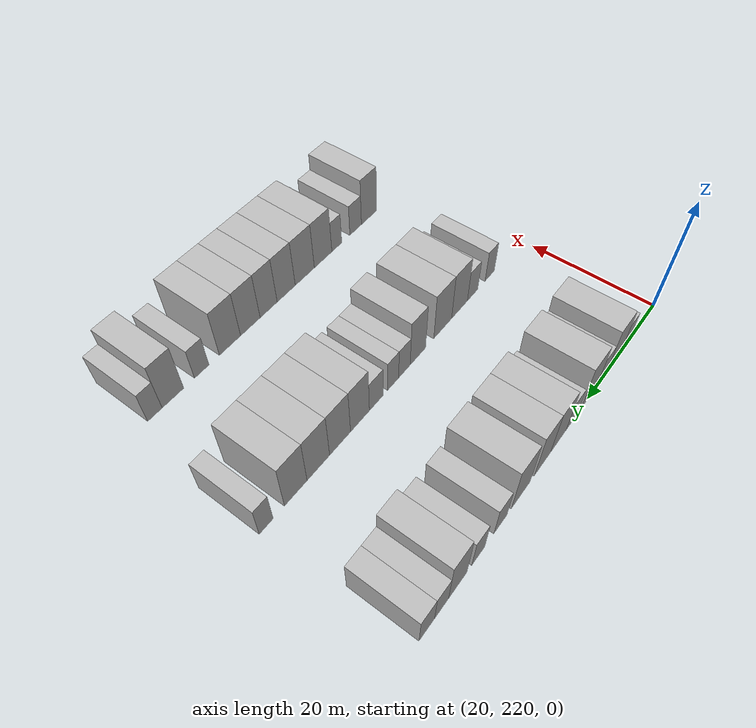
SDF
<sdf version="1.6">
 <world name="default">
  <model name="building_157">
   <static>1</static>
   <pose>25.0000 229.1659 0 0.000000 0.000000 0.000000</pose>
   <link name="link">
    <pose>0 0 3.00 0 0 0</pose>
    <collision name="collision"><geometry><box><size>10.0000 2.6459 6.0000</size></box></geometry></collision>
    <visual name="visual">
     <cast_shadows>0</cast_shadows>
     <geometry><box><size>10.0000 2.6459 6.0000</size></box></geometry>
     <material>
      <script>
       <uri>model://HANNAS_wall/materials/scripts</uri>
       <uri>model://HANNAS_wall/materials/textures</uri>
       <name>vrc/HANNAS_wall</name>
      </script>
     </material>
    </visual>
   </link>
  </model>
  <model name="building_158">
   <static>1</static>
   <pose>25.0000 232.6386 0 0.000000 0.000000 0.000000</pose>
   <link name="link">
    <pose>0 0 4.50 0 0 0</pose>
    <collision name="collision"><geometry><box><size>10.0000 4.2995 9.0000</size></box></geometry></collision>
    <visual name="visual">
     <cast_shadows>0</cast_shadows>
     <geometry><box><size>10.0000 4.2995 9.0000</size></box></geometry>
     <material>
      <script>
       <uri>model://HANNAS_wall/materials/scripts</uri>
       <uri>model://HANNAS_wall/materials/textures</uri>
       <name>vrc/HANNAS_wall</name>
      </script>
     </material>
    </visual>
   </link>
  </model>
  <model name="building_159">
   <static>1</static>
   <pose>25.0000 236.2185 0 0.000000 0.000000 0.000000</pose>
   <link name="link">
    <pose>0 0 3.00 0 0 0</pose>
    <collision name="collision"><geometry><box><size>10.0000 2.8604 6.0000</size></box></geometry></collision>
    <visual name="visual">
     <cast_shadows>0</cast_shadows>
     <geometry><box><size>10.0000 2.8604 6.0000</size></box></geometry>
     <material>
      <script>
       <uri>model://HANNAS_wall/materials/scripts</uri>
       <uri>model://HANNAS_wall/materials/textures</uri>
       <name>vrc/HANNAS_wall</name>
      </script>
     </material>
    </visual>
   </link>
  </model>
  <model name="building_160">
   <static>1</static>
   <pose>25.0000 239.8670 0 0.000000 0.000000 0.000000</pose>
   <link name="link">
    <pose>0 0 4.50 0 0 0</pose>
    <collision name="collision"><geometry><box><size>10.0000 4.4365 9.0000</size></box></geometry></collision>
    <visual name="visual">
     <cast_shadows>0</cast_shadows>
     <geometry><box><size>10.0000 4.4365 9.0000</size></box></geometry>
     <material>
      <script>
       <uri>model://HANNAS_wall/materials/scripts</uri>
       <uri>model://HANNAS_wall/materials/textures</uri>
       <name>vrc/HANNAS_wall</name>
      </script>
     </material>
    </visual>
   </link>
  </model>
  <model name="building_161">
   <static>1</static>
   <pose>25.0000 244.5406 0 0.000000 0.000000 0.000000</pose>
   <link name="link">
    <pose>0 0 3.00 0 0 0</pose>
    <collision name="collision"><geometry><box><size>10.0000 2.9107 6.0000</size></box></geometry></collision>
    <visual name="visual">
     <cast_shadows>0</cast_shadows>
     <geometry><box><size>10.0000 2.9107 6.0000</size></box></geometry>
     <material>
      <script>
       <uri>model://HANNAS_wall/materials/scripts</uri>
       <uri>model://HANNAS_wall/materials/textures</uri>
       <name>vrc/HANNAS_wall</name>
      </script>
     </material>
    </visual>
   </link>
  </model>
  <model name="building_162">
   <static>1</static>
   <pose>25.0000 248.0260 0 0.000000 0.000000 0.000000</pose>
   <link name="link">
    <pose>0 0 4.50 0 0 0</pose>
    <collision name="collision"><geometry><box><size>10.0000 4.0600 9.0000</size></box></geometry></collision>
    <visual name="visual">
     <cast_shadows>0</cast_shadows>
     <geometry><box><size>10.0000 4.0600 9.0000</size></box></geometry>
     <material>
      <script>
       <uri>model://HANNAS_wall/materials/scripts</uri>
       <uri>model://HANNAS_wall/materials/textures</uri>
       <name>vrc/HANNAS_wall</name>
      </script>
     </material>
    </visual>
   </link>
  </model>
  <model name="building_163">
   <static>1</static>
   <pose>25.0000 252.0669 0 0.000000 0.000000 0.000000</pose>
   <link name="link">
    <pose>0 0 4.50 0 0 0</pose>
    <collision name="collision"><geometry><box><size>10.0000 4.0218 9.0000</size></box></geometry></collision>
    <visual name="visual">
     <cast_shadows>0</cast_shadows>
     <geometry><box><size>10.0000 4.0218 9.0000</size></box></geometry>
     <material>
      <script>
       <uri>model://HANNAS_wall/materials/scripts</uri>
       <uri>model://HANNAS_wall/materials/textures</uri>
       <name>vrc/HANNAS_wall</name>
      </script>
     </material>
    </visual>
   </link>
  </model>
  <model name="building_164">
   <static>1</static>
   <pose>25.0000 257.2943 0 0.000000 0.000000 0.000000</pose>
   <link name="link">
    <pose>0 0 4.50 0 0 0</pose>
    <collision name="collision"><geometry><box><size>10.0000 4.4331 9.0000</size></box></geometry></collision>
    <visual name="visual">
     <cast_shadows>0</cast_shadows>
     <geometry><box><size>10.0000 4.4331 9.0000</size></box></geometry>
     <material>
      <script>
       <uri>model://HANNAS_wall/materials/scripts</uri>
       <uri>model://HANNAS_wall/materials/textures</uri>
       <name>vrc/HANNAS_wall</name>
      </script>
     </material>
    </visual>
   </link>
  </model>
  <model name="building_165">
   <static>1</static>
   <pose>25.0000 261.9774 0 0.000000 0.000000 0.000000</pose>
   <link name="link">
    <pose>0 0 3.00 0 0 0</pose>
    <collision name="collision"><geometry><box><size>10.0000 2.9332 6.0000</size></box></geometry></collision>
    <visual name="visual">
     <cast_shadows>0</cast_shadows>
     <geometry><box><size>10.0000 2.9332 6.0000</size></box></geometry>
     <material>
      <script>
       <uri>model://HANNAS_wall/materials/scripts</uri>
       <uri>model://HANNAS_wall/materials/textures</uri>
       <name>vrc/HANNAS_wall</name>
      </script>
     </material>
    </visual>
   </link>
  </model>
  <model name="building_166">
   <static>1</static>
   <pose>25.0000 266.8244 0 0.000000 0.000000 0.000000</pose>
   <link name="link">
    <pose>0 0 3.00 0 0 0</pose>
    <collision name="collision"><geometry><box><size>10.0000 2.7608 6.0000</size></box></geometry></collision>
    <visual name="visual">
     <cast_shadows>0</cast_shadows>
     <geometry><box><size>10.0000 2.7608 6.0000</size></box></geometry>
     <material>
      <script>
       <uri>model://HANNAS_wall/materials/scripts</uri>
       <uri>model://HANNAS_wall/materials/textures</uri>
       <name>vrc/HANNAS_wall</name>
      </script>
     </material>
    </visual>
   </link>
  </model>
  <model name="building_167">
   <static>1</static>
   <pose>25.0000 271.0900 0 0.000000 0.000000 0.000000</pose>
   <link name="link">
    <pose>0 0 4.50 0 0 0</pose>
    <collision name="collision"><geometry><box><size>10.0000 3.7704 9.0000</size></box></geometry></collision>
    <visual name="visual">
     <cast_shadows>0</cast_shadows>
     <geometry><box><size>10.0000 3.7704 9.0000</size></box></geometry>
     <material>
      <script>
       <uri>model://HANNAS_wall/materials/scripts</uri>
       <uri>model://HANNAS_wall/materials/textures</uri>
       <name>vrc/HANNAS_wall</name>
      </script>
     </material>
    </visual>
   </link>
  </model>
  <model name="building_168">
   <static>1</static>
   <pose>25.0000 274.3409 0 0.000000 0.000000 0.000000</pose>
   <link name="link">
    <pose>0 0 3.00 0 0 0</pose>
    <collision name="collision"><geometry><box><size>10.0000 2.7313 6.0000</size></box></geometry></collision>
    <visual name="visual">
     <cast_shadows>0</cast_shadows>
     <geometry><box><size>10.0000 2.7313 6.0000</size></box></geometry>
     <material>
      <script>
       <uri>model://HANNAS_wall/materials/scripts</uri>
       <uri>model://HANNAS_wall/materials/textures</uri>
       <name>vrc/HANNAS_wall</name>
      </script>
     </material>
    </visual>
   </link>
  </model>
  <model name="building_169">
   <static>1</static>
   <pose>25.0000 277.1735 0 0.000000 0.000000 0.000000</pose>
   <link name="link">
    <pose>0 0 3.00 0 0 0</pose>
    <collision name="collision"><geometry><box><size>10.0000 2.9341 6.0000</size></box></geometry></collision>
    <visual name="visual">
     <cast_shadows>0</cast_shadows>
     <geometry><box><size>10.0000 2.9341 6.0000</size></box></geometry>
     <material>
      <script>
       <uri>model://HANNAS_wall/materials/scripts</uri>
       <uri>model://HANNAS_wall/materials/textures</uri>
       <name>vrc/HANNAS_wall</name>
      </script>
     </material>
    </visual>
   </link>
  </model>
  <model name="building_341">
   <static>1</static>
   <pose>47.0000 229.3383 0 0.000000 0.000000 0.000000</pose>
   <link name="link">
    <pose>0 0 3.00 0 0 0</pose>
    <collision name="collision"><geometry><box><size>10.0000 2.5798 6.0000</size></box></geometry></collision>
    <visual name="visual">
     <cast_shadows>0</cast_shadows>
     <geometry><box><size>10.0000 2.5798 6.0000</size></box></geometry>
     <material>
      <script>
       <uri>model://HANNAS_wall/materials/scripts</uri>
       <uri>model://HANNAS_wall/materials/textures</uri>
       <name>vrc/HANNAS_wall</name>
      </script>
     </material>
    </visual>
   </link>
  </model>
  <model name="building_342">
   <static>1</static>
   <pose>47.0000 234.0190 0 0.000000 0.000000 0.000000</pose>
   <link name="link">
    <pose>0 0 3.00 0 0 0</pose>
    <collision name="collision"><geometry><box><size>10.0000 2.7816 6.0000</size></box></geometry></collision>
    <visual name="visual">
     <cast_shadows>0</cast_shadows>
     <geometry><box><size>10.0000 2.7816 6.0000</size></box></geometry>
     <material>
      <script>
       <uri>model://HANNAS_wall/materials/scripts</uri>
       <uri>model://HANNAS_wall/materials/textures</uri>
       <name>vrc/HANNAS_wall</name>
      </script>
     </material>
    </visual>
   </link>
  </model>
  <model name="building_343">
   <static>1</static>
   <pose>47.0000 237.4681 0 0.000000 0.000000 0.000000</pose>
   <link name="link">
    <pose>0 0 4.50 0 0 0</pose>
    <collision name="collision"><geometry><box><size>10.0000 4.1166 9.0000</size></box></geometry></collision>
    <visual name="visual">
     <cast_shadows>0</cast_shadows>
     <geometry><box><size>10.0000 4.1166 9.0000</size></box></geometry>
     <material>
      <script>
       <uri>model://HANNAS_wall/materials/scripts</uri>
       <uri>model://HANNAS_wall/materials/textures</uri>
       <name>vrc/HANNAS_wall</name>
      </script>
     </material>
    </visual>
   </link>
  </model>
  <model name="building_344">
   <static>1</static>
   <pose>47.0000 241.7662 0 0.000000 0.000000 0.000000</pose>
   <link name="link">
    <pose>0 0 4.50 0 0 0</pose>
    <collision name="collision"><geometry><box><size>10.0000 4.4795 9.0000</size></box></geometry></collision>
    <visual name="visual">
     <cast_shadows>0</cast_shadows>
     <geometry><box><size>10.0000 4.4795 9.0000</size></box></geometry>
     <material>
      <script>
       <uri>model://HANNAS_wall/materials/scripts</uri>
       <uri>model://HANNAS_wall/materials/textures</uri>
       <name>vrc/HANNAS_wall</name>
      </script>
     </material>
    </visual>
   </link>
  </model>
  <model name="building_345">
   <static>1</static>
   <pose>47.0000 247.8381 0 0.000000 0.000000 0.000000</pose>
   <link name="link">
    <pose>0 0 4.50 0 0 0</pose>
    <collision name="collision"><geometry><box><size>10.0000 3.6643 9.0000</size></box></geometry></collision>
    <visual name="visual">
     <cast_shadows>0</cast_shadows>
     <geometry><box><size>10.0000 3.6643 9.0000</size></box></geometry>
     <material>
      <script>
       <uri>model://HANNAS_wall/materials/scripts</uri>
       <uri>model://HANNAS_wall/materials/textures</uri>
       <name>vrc/HANNAS_wall</name>
      </script>
     </material>
    </visual>
   </link>
  </model>
  <model name="building_346">
   <static>1</static>
   <pose>47.0000 250.9982 0 0.000000 0.000000 0.000000</pose>
   <link name="link">
    <pose>0 0 3.00 0 0 0</pose>
    <collision name="collision"><geometry><box><size>10.0000 2.6559 6.0000</size></box></geometry></collision>
    <visual name="visual">
     <cast_shadows>0</cast_shadows>
     <geometry><box><size>10.0000 2.6559 6.0000</size></box></geometry>
     <material>
      <script>
       <uri>model://HANNAS_wall/materials/scripts</uri>
       <uri>model://HANNAS_wall/materials/textures</uri>
       <name>vrc/HANNAS_wall</name>
      </script>
     </material>
    </visual>
   </link>
  </model>
  <model name="building_347">
   <static>1</static>
   <pose>47.0000 253.5662 0 0.000000 0.000000 0.000000</pose>
   <link name="link">
    <pose>0 0 3.00 0 0 0</pose>
    <collision name="collision"><geometry><box><size>10.0000 2.4802 6.0000</size></box></geometry></collision>
    <visual name="visual">
     <cast_shadows>0</cast_shadows>
     <geometry><box><size>10.0000 2.4802 6.0000</size></box></geometry>
     <material>
      <script>
       <uri>model://HANNAS_wall/materials/scripts</uri>
       <uri>model://HANNAS_wall/materials/textures</uri>
       <name>vrc/HANNAS_wall</name>
      </script>
     </material>
    </visual>
   </link>
  </model>
  <model name="building_348">
   <static>1</static>
   <pose>47.0000 257.2979 0 0.000000 0.000000 0.000000</pose>
   <link name="link">
    <pose>0 0 3.00 0 0 0</pose>
    <collision name="collision"><geometry><box><size>10.0000 2.9831 6.0000</size></box></geometry></collision>
    <visual name="visual">
     <cast_shadows>0</cast_shadows>
     <geometry><box><size>10.0000 2.9831 6.0000</size></box></geometry>
     <material>
      <script>
       <uri>model://HANNAS_wall/materials/scripts</uri>
       <uri>model://HANNAS_wall/materials/textures</uri>
       <name>vrc/HANNAS_wall</name>
      </script>
     </material>
    </visual>
   </link>
  </model>
  <model name="building_349">
   <static>1</static>
   <pose>47.0000 260.7665 0 0.000000 0.000000 0.000000</pose>
   <link name="link">
    <pose>0 0 4.50 0 0 0</pose>
    <collision name="collision"><geometry><box><size>10.0000 3.9541 9.0000</size></box></geometry></collision>
    <visual name="visual">
     <cast_shadows>0</cast_shadows>
     <geometry><box><size>10.0000 3.9541 9.0000</size></box></geometry>
     <material>
      <script>
       <uri>model://HANNAS_wall/materials/scripts</uri>
       <uri>model://HANNAS_wall/materials/textures</uri>
       <name>vrc/HANNAS_wall</name>
      </script>
     </material>
    </visual>
   </link>
  </model>
  <model name="building_350">
   <static>1</static>
   <pose>47.0000 264.8565 0 0.000000 0.000000 0.000000</pose>
   <link name="link">
    <pose>0 0 4.50 0 0 0</pose>
    <collision name="collision"><geometry><box><size>10.0000 4.2259 9.0000</size></box></geometry></collision>
    <visual name="visual">
     <cast_shadows>0</cast_shadows>
     <geometry><box><size>10.0000 4.2259 9.0000</size></box></geometry>
     <material>
      <script>
       <uri>model://HANNAS_wall/materials/scripts</uri>
       <uri>model://HANNAS_wall/materials/textures</uri>
       <name>vrc/HANNAS_wall</name>
      </script>
     </material>
    </visual>
   </link>
  </model>
  <model name="building_351">
   <static>1</static>
   <pose>47.0000 269.1509 0 0.000000 0.000000 0.000000</pose>
   <link name="link">
    <pose>0 0 4.50 0 0 0</pose>
    <collision name="collision"><geometry><box><size>10.0000 4.3629 9.0000</size></box></geometry></collision>
    <visual name="visual">
     <cast_shadows>0</cast_shadows>
     <geometry><box><size>10.0000 4.3629 9.0000</size></box></geometry>
     <material>
      <script>
       <uri>model://HANNAS_wall/materials/scripts</uri>
       <uri>model://HANNAS_wall/materials/textures</uri>
       <name>vrc/HANNAS_wall</name>
      </script>
     </material>
    </visual>
   </link>
  </model>
  <model name="building_352">
   <static>1</static>
   <pose>47.0000 273.4350 0 0.000000 0.000000 0.000000</pose>
   <link name="link">
    <pose>0 0 4.50 0 0 0</pose>
    <collision name="collision"><geometry><box><size>10.0000 4.2053 9.0000</size></box></geometry></collision>
    <visual name="visual">
     <cast_shadows>0</cast_shadows>
     <geometry><box><size>10.0000 4.2053 9.0000</size></box></geometry>
     <material>
      <script>
       <uri>model://HANNAS_wall/materials/scripts</uri>
       <uri>model://HANNAS_wall/materials/textures</uri>
       <name>vrc/HANNAS_wall</name>
      </script>
     </material>
    </visual>
   </link>
  </model>
  <model name="building_353">
   <static>1</static>
   <pose>47.0000 278.7621 0 0.000000 0.000000 0.000000</pose>
   <link name="link">
    <pose>0 0 3.00 0 0 0</pose>
    <collision name="collision"><geometry><box><size>10.0000 2.4488 6.0000</size></box></geometry></collision>
    <visual name="visual">
     <cast_shadows>0</cast_shadows>
     <geometry><box><size>10.0000 2.4488 6.0000</size></box></geometry>
     <material>
      <script>
       <uri>model://HANNAS_wall/materials/scripts</uri>
       <uri>model://HANNAS_wall/materials/textures</uri>
       <name>vrc/HANNAS_wall</name>
      </script>
     </material>
    </visual>
   </link>
  </model>
  <model name="building_536">
   <static>1</static>
   <pose>69.0000 230.2603 0 0.000000 0.000000 0.000000</pose>
   <link name="link">
    <pose>0 0 4.50 0 0 0</pose>
    <collision name="collision"><geometry><box><size>10.0000 3.9562 9.0000</size></box></geometry></collision>
    <visual name="visual">
     <cast_shadows>0</cast_shadows>
     <geometry><box><size>10.0000 3.9562 9.0000</size></box></geometry>
     <material>
      <script>
       <uri>model://HANNAS_wall/materials/scripts</uri>
       <uri>model://HANNAS_wall/materials/textures</uri>
       <name>vrc/HANNAS_wall</name>
      </script>
     </material>
    </visual>
   </link>
  </model>
  <model name="building_537">
   <static>1</static>
   <pose>69.0000 233.7092 0 0.000000 0.000000 0.000000</pose>
   <link name="link">
    <pose>0 0 3.00 0 0 0</pose>
    <collision name="collision"><geometry><box><size>10.0000 2.9415 6.0000</size></box></geometry></collision>
    <visual name="visual">
     <cast_shadows>0</cast_shadows>
     <geometry><box><size>10.0000 2.9415 6.0000</size></box></geometry>
     <material>
      <script>
       <uri>model://HANNAS_wall/materials/scripts</uri>
       <uri>model://HANNAS_wall/materials/textures</uri>
       <name>vrc/HANNAS_wall</name>
      </script>
     </material>
    </visual>
   </link>
  </model>
  <model name="building_538">
   <static>1</static>
   <pose>69.0000 238.3922 0 0.000000 0.000000 0.000000</pose>
   <link name="link">
    <pose>0 0 3.00 0 0 0</pose>
    <collision name="collision"><geometry><box><size>10.0000 2.4243 6.0000</size></box></geometry></collision>
    <visual name="visual">
     <cast_shadows>0</cast_shadows>
     <geometry><box><size>10.0000 2.4243 6.0000</size></box></geometry>
     <material>
      <script>
       <uri>model://HANNAS_wall/materials/scripts</uri>
       <uri>model://HANNAS_wall/materials/textures</uri>
       <name>vrc/HANNAS_wall</name>
      </script>
     </material>
    </visual>
   </link>
  </model>
  <model name="building_539">
   <static>1</static>
   <pose>69.0000 241.6808 0 0.000000 0.000000 0.000000</pose>
   <link name="link">
    <pose>0 0 4.50 0 0 0</pose>
    <collision name="collision"><geometry><box><size>10.0000 4.1530 9.0000</size></box></geometry></collision>
    <visual name="visual">
     <cast_shadows>0</cast_shadows>
     <geometry><box><size>10.0000 4.1530 9.0000</size></box></geometry>
     <material>
      <script>
       <uri>model://HANNAS_wall/materials/scripts</uri>
       <uri>model://HANNAS_wall/materials/textures</uri>
       <name>vrc/HANNAS_wall</name>
      </script>
     </material>
    </visual>
   </link>
  </model>
  <model name="building_540">
   <static>1</static>
   <pose>69.0000 245.9499 0 0.000000 0.000000 0.000000</pose>
   <link name="link">
    <pose>0 0 4.50 0 0 0</pose>
    <collision name="collision"><geometry><box><size>10.0000 4.3853 9.0000</size></box></geometry></collision>
    <visual name="visual">
     <cast_shadows>0</cast_shadows>
     <geometry><box><size>10.0000 4.3853 9.0000</size></box></geometry>
     <material>
      <script>
       <uri>model://HANNAS_wall/materials/scripts</uri>
       <uri>model://HANNAS_wall/materials/textures</uri>
       <name>vrc/HANNAS_wall</name>
      </script>
     </material>
    </visual>
   </link>
  </model>
  <model name="building_541">
   <static>1</static>
   <pose>69.0000 250.1425 0 0.000000 0.000000 0.000000</pose>
   <link name="link">
    <pose>0 0 4.50 0 0 0</pose>
    <collision name="collision"><geometry><box><size>10.0000 3.9998 9.0000</size></box></geometry></collision>
    <visual name="visual">
     <cast_shadows>0</cast_shadows>
     <geometry><box><size>10.0000 3.9998 9.0000</size></box></geometry>
     <material>
      <script>
       <uri>model://HANNAS_wall/materials/scripts</uri>
       <uri>model://HANNAS_wall/materials/textures</uri>
       <name>vrc/HANNAS_wall</name>
      </script>
     </material>
    </visual>
   </link>
  </model>
  <model name="building_542">
   <static>1</static>
   <pose>69.0000 253.9665 0 0.000000 0.000000 0.000000</pose>
   <link name="link">
    <pose>0 0 4.50 0 0 0</pose>
    <collision name="collision"><geometry><box><size>10.0000 3.6483 9.0000</size></box></geometry></collision>
    <visual name="visual">
     <cast_shadows>0</cast_shadows>
     <geometry><box><size>10.0000 3.6483 9.0000</size></box></geometry>
     <material>
      <script>
       <uri>model://HANNAS_wall/materials/scripts</uri>
       <uri>model://HANNAS_wall/materials/textures</uri>
       <name>vrc/HANNAS_wall</name>
      </script>
     </material>
    </visual>
   </link>
  </model>
  <model name="building_543">
   <static>1</static>
   <pose>69.0000 257.8092 0 0.000000 0.000000 0.000000</pose>
   <link name="link">
    <pose>0 0 4.50 0 0 0</pose>
    <collision name="collision"><geometry><box><size>10.0000 4.0371 9.0000</size></box></geometry></collision>
    <visual name="visual">
     <cast_shadows>0</cast_shadows>
     <geometry><box><size>10.0000 4.0371 9.0000</size></box></geometry>
     <material>
      <script>
       <uri>model://HANNAS_wall/materials/scripts</uri>
       <uri>model://HANNAS_wall/materials/textures</uri>
       <name>vrc/HANNAS_wall</name>
      </script>
     </material>
    </visual>
   </link>
  </model>
  <model name="building_544">
   <static>1</static>
   <pose>69.0000 261.9507 0 0.000000 0.000000 0.000000</pose>
   <link name="link">
    <pose>0 0 4.50 0 0 0</pose>
    <collision name="collision"><geometry><box><size>10.0000 4.2457 9.0000</size></box></geometry></collision>
    <visual name="visual">
     <cast_shadows>0</cast_shadows>
     <geometry><box><size>10.0000 4.2457 9.0000</size></box></geometry>
     <material>
      <script>
       <uri>model://HANNAS_wall/materials/scripts</uri>
       <uri>model://HANNAS_wall/materials/textures</uri>
       <name>vrc/HANNAS_wall</name>
      </script>
     </material>
    </visual>
   </link>
  </model>
  <model name="building_545">
   <static>1</static>
   <pose>69.0000 267.4516 0 0.000000 0.000000 0.000000</pose>
   <link name="link">
    <pose>0 0 3.00 0 0 0</pose>
    <collision name="collision"><geometry><box><size>10.0000 2.7561 6.0000</size></box></geometry></collision>
    <visual name="visual">
     <cast_shadows>0</cast_shadows>
     <geometry><box><size>10.0000 2.7561 6.0000</size></box></geometry>
     <material>
      <script>
       <uri>model://HANNAS_wall/materials/scripts</uri>
       <uri>model://HANNAS_wall/materials/textures</uri>
       <name>vrc/HANNAS_wall</name>
      </script>
     </material>
    </visual>
   </link>
  </model>
  <model name="building_546">
   <static>1</static>
   <pose>69.0000 272.7742 0 0.000000 0.000000 0.000000</pose>
   <link name="link">
    <pose>0 0 4.50 0 0 0</pose>
    <collision name="collision"><geometry><box><size>10.0000 3.8892 9.0000</size></box></geometry></collision>
    <visual name="visual">
     <cast_shadows>0</cast_shadows>
     <geometry><box><size>10.0000 3.8892 9.0000</size></box></geometry>
     <material>
      <script>
       <uri>model://HANNAS_wall/materials/scripts</uri>
       <uri>model://HANNAS_wall/materials/textures</uri>
       <name>vrc/HANNAS_wall</name>
      </script>
     </material>
    </visual>
   </link>
  </model>
  <model name="building_547">
   <static>1</static>
   <pose>69.0000 275.9908 0 0.000000 0.000000 0.000000</pose>
   <link name="link">
    <pose>0 0 3.00 0 0 0</pose>
    <collision name="collision"><geometry><box><size>10.0000 2.5441 6.0000</size></box></geometry></collision>
    <visual name="visual">
     <cast_shadows>0</cast_shadows>
     <geometry><box><size>10.0000 2.5441 6.0000</size></box></geometry>
     <material>
      <script>
       <uri>model://HANNAS_wall/materials/scripts</uri>
       <uri>model://HANNAS_wall/materials/textures</uri>
       <name>vrc/HANNAS_wall</name>
      </script>
     </material>
    </visual>
   </link>
  </model>
 </world>
</sdf>
